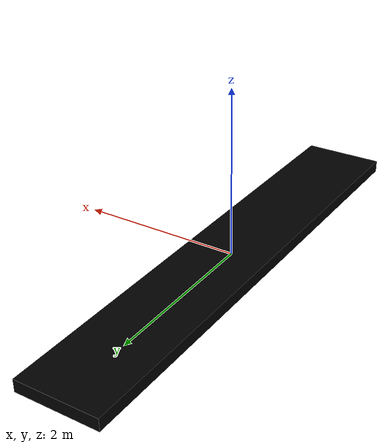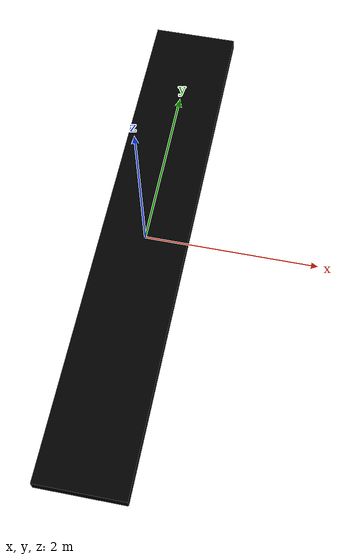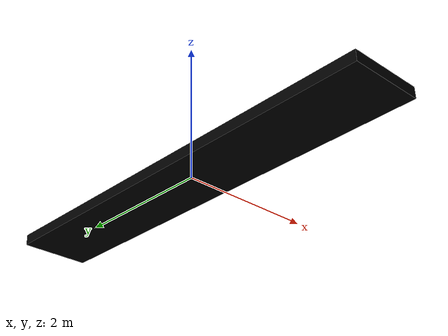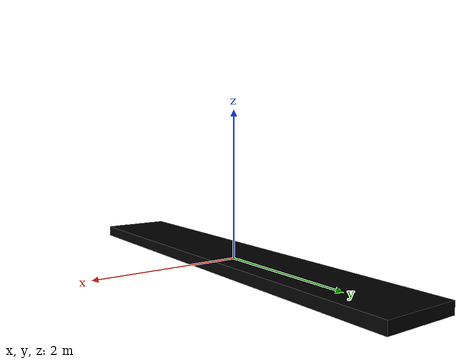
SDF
<?xml version='1.0'?>
<!-- https://answers.gazebosim.org/question/27450/modifying-a-conveyor-belt-and-using-it-in-a-different-simulation/ -->
<sdf version='1.7'>
  <model name='conveyor_belt_simplified'>

    <!-- Fixed joint to world to prevent belt from moving when hit -->
    <joint name='world_fixed_joint' type='fixed'>
      <parent>world</parent>
      <child>belt_visual</child>
    </joint>

    <link name='belt_visual'>

      <pose>0 0 0.0 0 -0 0</pose>
      <inertial>
        <pose>0 0 0. 0 -0 0</pose>
        <mass>1000</mass>
        <inertia>
          <ixx>7.5972</ixx>  <!-- for a box: ixx = 0.083 * mass * (y*y + z*z) -->
          <ixy>0</ixy>       <!-- for a box: ixy = 0 -->
          <ixz>0</ixz>       <!-- for a box: ixz = 0 -->
          <iyy>0.996</iyy> <!-- for a box: iyy = 0.083 * mass * (x*x + z*z) -->
          <iyz>0</iyz>       <!-- for a box: iyz = 0 -->
          <izz>8.10</izz>  <!-- for a box: izz = 0.083 * mass * (x*x + y*y) -->
        </inertia>
      </inertial>
      <self_collide>0</self_collide>
      <enable_wind>0</enable_wind>
      <kinematic>0</kinematic>
      <gravity>0</gravity>
      <visual name='belt_visual_visual'>
        <pose>0 0 0.0 0 -0 0</pose>
        <geometry>
          <box>
            <size>1 6 0.15</size>
          </box>
        </geometry>
        <material>
          <shader type='pixel'>
            <normal_map>__default__</normal_map>
          </shader>
          <ambient>0 0 0 1</ambient>
          <diffuse>0 0 0 1</diffuse>
          <specular>0 0 0 1</specular>
          <emissive>0 0 0 1</emissive>
        </material>
        <transparency>0</transparency>
        <cast_shadows>1</cast_shadows>
      </visual>
      <collision name='belt_visual_collision'>
        <laser_retro>0</laser_retro>
        <max_contacts>10</max_contacts>
        <pose>0 0 0.0 1.5708 -0 1.5708</pose>
        <geometry>
          <box>
            <size>6 0.15 1</size>
          </box>
        </geometry>
        <surface>
          <friction>
            <ode>
              <mu>1</mu>
              <mu2>1</mu2>
              <fdir1>0 0 0</fdir1>
              <slip1>0</slip1>
              <slip2>0</slip2>
            </ode>
            <torsional>
              <coefficient>1</coefficient>
              <patch_radius>0</patch_radius>
              <surface_radius>0</surface_radius>
              <use_patch_radius>1</use_patch_radius>
              <ode>
                <slip>0</slip>
              </ode>
            </torsional>
          </friction>
          <bounce>
            <restitution_coefficient>0</restitution_coefficient>
            <threshold>1e+06</threshold>
          </bounce>
          <contact>
            <collide_without_contact>0</collide_without_contact>
            <collide_without_contact_bitmask>1</collide_without_contact_bitmask>
            <collide_bitmask>1</collide_bitmask>
            <ode>
              <soft_cfm>0</soft_cfm>
              <soft_erp>0.2</soft_erp>
              <kp>1e+13</kp>
              <kd>1</kd>
              <max_vel>0.01</max_vel>
              <min_depth>0</min_depth>
            </ode>
            <bullet>
              <split_impulse>1</split_impulse>
              <split_impulse_penetration_threshold>-0.01</split_impulse_penetration_threshold>
              <soft_cfm>0</soft_cfm>
              <soft_erp>0.2</soft_erp>
              <kp>1e+13</kp>
              <kd>1</kd>
            </bullet>
          </contact>
        </surface>
      </collision>
    </link>
    <link name='belt_moving'>
      <pose>0 0 0.08 0 -0 0</pose>
      <inertial>
        <pose>0 0 0.01 0 -0 0</pose>
        <mass>.1</mass>
        <inertia>
          <ixx>1e-6</ixx><ixy>0</ixy><ixz>0</ixz>
          <iyy>1e-6</iyy><iyz>0</iyz>
          <izz>1e-6</izz>
        </inertia>
      </inertial>
      <self_collide>0</self_collide>
      <enable_wind>0</enable_wind>
      <kinematic>0</kinematic>
      <gravity>0</gravity>
      <collision name='belt_moving_collision'>
        <laser_retro>0</laser_retro>
        <max_contacts>10</max_contacts>
        <pose>0 0 0.001 0 -0 0</pose>
        <geometry>
          <box>
            <size>1 6 0.001</size>
          </box>
        </geometry>
        <surface>
          <friction>
            <ode>
              <mu>1</mu>
              <mu2>1</mu2>
              <fdir1>0 0 0</fdir1>
              <slip1>0</slip1>
              <slip2>0</slip2>
            </ode>
            <torsional>
              <coefficient>1</coefficient>
              <patch_radius>0</patch_radius>
              <surface_radius>0</surface_radius>
              <use_patch_radius>1</use_patch_radius>
              <ode>
                <slip>0</slip>
              </ode>
            </torsional>
          </friction>
          <bounce>
            <restitution_coefficient>0</restitution_coefficient>
            <threshold>1e+06</threshold>
          </bounce>
          <contact>
            <collide_without_contact>0</collide_without_contact>
            <collide_without_contact_bitmask>1</collide_without_contact_bitmask>
            <collide_bitmask>1</collide_bitmask>
            <ode>
              <soft_cfm>0</soft_cfm>
              <soft_erp>0.2</soft_erp>
              <kp>1e+13</kp>
              <kd>1</kd>
              <max_vel>0.01</max_vel>
              <min_depth>0</min_depth>
            </ode>
            <bullet>
              <split_impulse>1</split_impulse>
              <split_impulse_penetration_threshold>-0.01</split_impulse_penetration_threshold>
              <soft_cfm>0</soft_cfm>
              <soft_erp>0.2</soft_erp>
              <kp>1e+13</kp>
              <kd>1</kd>
            </bullet>
          </contact>
        </surface>
      </collision>
    </link>
    <joint name='belt_joint' type='prismatic'>
      <parent>belt_visual</parent>
      <child>belt_moving</child>
      <pose>0 0 .001 0 -0 0</pose>
      <axis>
        <xyz>0 1 0</xyz>
        <limit>
          <lower>0</lower>
          <upper>1</upper>
          <effort>1000</effort>
          <velocity>1000</velocity>
        </limit>
        <dynamics>
          <spring_reference>0</spring_reference>
          <spring_stiffness>0</spring_stiffness>
          <damping>0</damping>
          <friction>0</friction>
        </dynamics>
      </axis>
      <physics>
        <ode>
          <limit>
            <cfm>0</cfm>
            <erp>0.2</erp>
          </limit>
          <suspension>
            <cfm>0</cfm>
            <erp>0.2</erp>
          </suspension>
        </ode>
      </physics>
    </joint>
    <static>0</static>
    <allow_auto_disable>1</allow_auto_disable>

    <plugin filename="libConveyorBeltPlugin.so" name="gz::sim::v8::systems::ConveyorBeltPlugin">
      <max_velocity>0.120</max_velocity>
      <publish_rate>1000</publish_rate>
      <joint_name>belt_joint</joint_name>
      <lower_limit>0.0</lower_limit>
      <upper_limit>1.01</upper_limit>
      <initial_power>100</initial_power>
    </plugin>
  </model>
</sdf>
